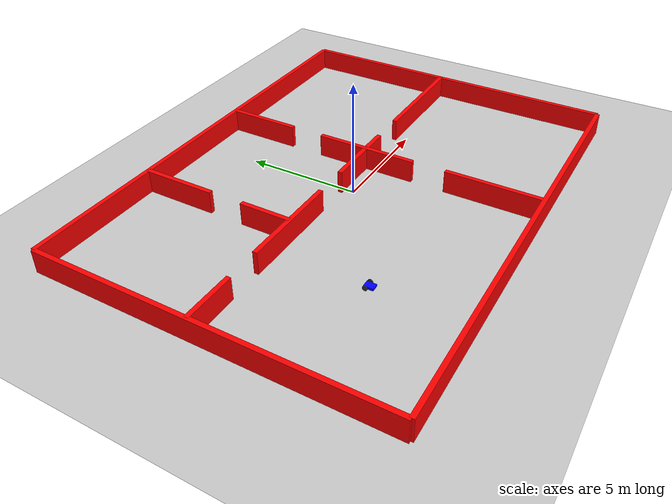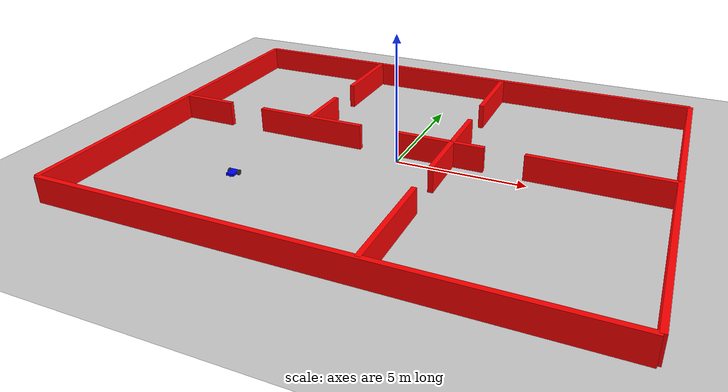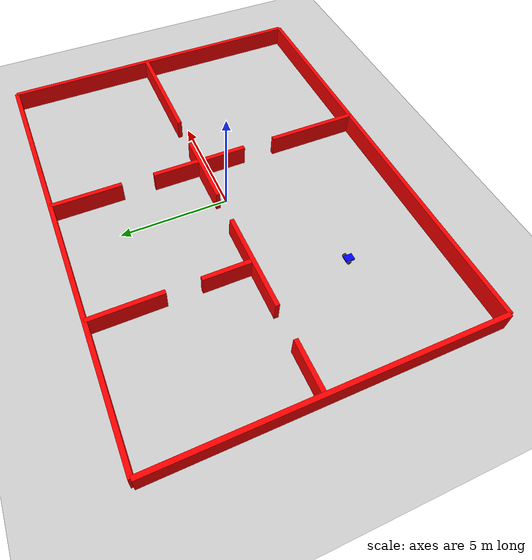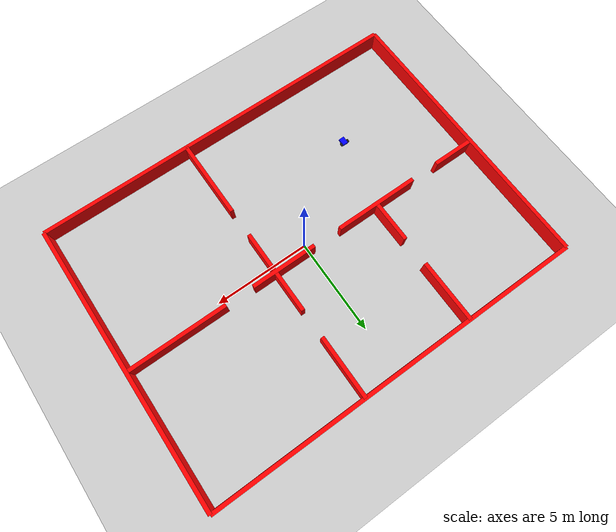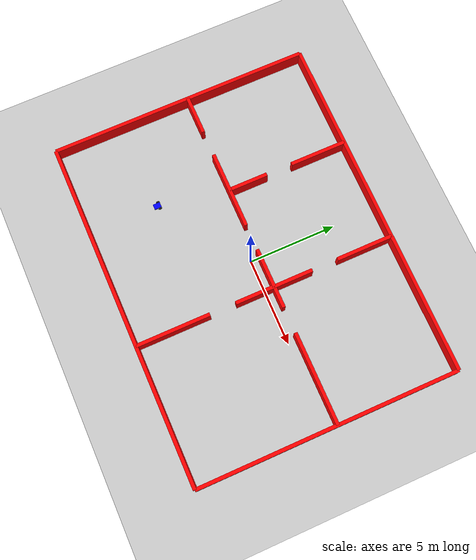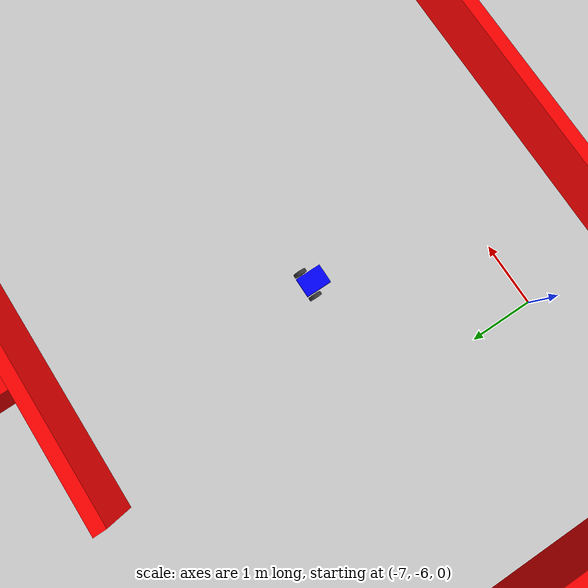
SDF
<?xml version="1.0" ?>
<sdf version="1.8">
  <world name="default">
    <plugin filename="gz-sim-physics-system" name="gz::sim::systems::Physics"></plugin>
    <plugin filename="gz-sim-scene-broadcaster-system" name="gz::sim::systems::SceneBroadcaster"></plugin>
    <plugin filename="gz-sim-sensors-system" name="gz::sim::systems::Sensors">
      <render_engine>ogre2</render_engine>
    </plugin>
    <plugin filename="gz-sim-contact-system" name="gz::sim::systems::Contact"></plugin>

    <scene>
      <ambient>0.4 0.4 0.4 1</ambient>
      <background>0.7 0.7 0.7 1</background>
      <shadows>0</shadows>
    </scene>
    <light name="sun" type="directional">
      <cast_shadows>1</cast_shadows>
      <pose>0 0 10 0 0 0</pose>
      <diffuse>0.8 0.8 0.8 1</diffuse>
      <specular>0.2 0.2 0.2 1</specular>
      <direction>0.5 0.1 -0.9</direction>
    </light>

    <gui fullscreen="0">
      <camera name="user_camera">
        <pose>0 0 24 0 1.56 3.14</pose>
      </camera>
    </gui>

    <model name="ground_plane">
      <static>true</static>
      <link name="link">
        <collision name="collision"><geometry><plane><normal>0 0 1</normal><size>100 100</size></plane></geometry></collision>
        <visual name="visual">
          <geometry><plane><normal>0 0 1</normal><size>100 100</size></plane></geometry>
          <material><ambient>0.8 0.8 0.8 1</ambient><diffuse>0.8 0.8 0.8 1</diffuse></material>
        </visual>
      </link>
    </model>

    <!-- 20x15m apartment centered at origin -->
    <model name="maze">
      <static>true</static>
      <link name="walls">
        <!-- Outer walls -->
        <visual name="b_bot"><pose>0 -7.5 0.5 0 0 0</pose><geometry><box><size>20 0.2 1</size></box></geometry><material><ambient>1 0 0 1</ambient><diffuse>1 0 0 1</diffuse></material></visual>
        <collision name="c_bot"><pose>0 -7.5 0.5 0 0 0</pose><geometry><box><size>20 0.2 1</size></box></geometry></collision>
        <visual name="b_top"><pose>0 7.5 0.5 0 0 0</pose><geometry><box><size>20 0.2 1</size></box></geometry><material><ambient>1 0 0 1</ambient><diffuse>1 0 0 1</diffuse></material></visual>
        <collision name="c_top"><pose>0 7.5 0.5 0 0 0</pose><geometry><box><size>20 0.2 1</size></box></geometry></collision>
        <visual name="b_lft"><pose>-10 0 0.5 0 0 0</pose><geometry><box><size>0.2 15 1</size></box></geometry><material><ambient>1 0 0 1</ambient><diffuse>1 0 0 1</diffuse></material></visual>
        <collision name="c_lft"><pose>-10 0 0.5 0 0 0</pose><geometry><box><size>0.2 15 1</size></box></geometry></collision>
        <visual name="b_rgt"><pose>10 0 0.5 0 0 0</pose><geometry><box><size>0.2 15 1</size></box></geometry><material><ambient>1 0 0 1</ambient><diffuse>1 0 0 1</diffuse></material></visual>
        <collision name="c_rgt"><pose>10 0 0.5 0 0 0</pose><geometry><box><size>0.2 15 1</size></box></geometry></collision>

        <!-- Horizontal wall at y=0.5: separates top rooms from bottom -->
        <visual name="wh1"><pose>-8.875 0.5 0.5 0 0 0</pose><geometry><box><size>2.25 0.2 1</size></box></geometry><material><ambient>1 0 0 1</ambient><diffuse>1 0 0 1</diffuse></material></visual>
        <collision name="cwh1"><pose>-8.875 0.5 0.5 0 0 0</pose><geometry><box><size>2.25 0.2 1</size></box></geometry></collision>
        <!-- Door gap (bedroom1 door) -->
        <visual name="wh2"><pose>-4 0.5 0.5 0 0 0</pose><geometry><box><size>4.5 0.2 1</size></box></geometry><material><ambient>1 0 0 1</ambient><diffuse>1 0 0 1</diffuse></material></visual>
        <collision name="cwh2"><pose>-4 0.5 0.5 0 0 0</pose><geometry><box><size>4.5 0.2 1</size></box></geometry></collision>
        <!-- Door gap (bedroom2 door) -->
        <visual name="wh3"><pose>1.5 0.5 0.5 0 0 0</pose><geometry><box><size>3.5 0.2 1</size></box></geometry><material><ambient>1 0 0 1</ambient><diffuse>1 0 0 1</diffuse></material></visual>
        <collision name="cwh3"><pose>1.5 0.5 0.5 0 0 0</pose><geometry><box><size>3.5 0.2 1</size></box></geometry></collision>
        <!-- Door gap (kitchen door) -->
        <visual name="wh4"><pose>7.375 0.5 0.5 0 0 0</pose><geometry><box><size>5.25 0.2 1</size></box></geometry><material><ambient>1 0 0 1</ambient><diffuse>1 0 0 1</diffuse></material></visual>
        <collision name="cwh4"><pose>7.375 0.5 0.5 0 0 0</pose><geometry><box><size>5.25 0.2 1</size></box></geometry></collision>

        <!-- Vertical wall at x=-4: bedroom1 | bedroom2 -->
        <visual name="wv1a"><pose>-4 1.625 0.5 0 0 0</pose><geometry><box><size>0.2 2.25 1</size></box></geometry><material><ambient>1 0 0 1</ambient><diffuse>1 0 0 1</diffuse></material></visual>
        <collision name="cwv1a"><pose>-4 1.625 0.5 0 0 0</pose><geometry><box><size>0.2 2.25 1</size></box></geometry></collision>
        <!-- Door gap -->
        <visual name="wv1b"><pose>-4 5.875 0.5 0 0 0</pose><geometry><box><size>0.2 3.25 1</size></box></geometry><material><ambient>1 0 0 1</ambient><diffuse>1 0 0 1</diffuse></material></visual>
        <collision name="cwv1b"><pose>-4 5.875 0.5 0 0 0</pose><geometry><box><size>0.2 3.25 1</size></box></geometry></collision>

        <!-- Vertical wall at x=2: bedrooms | kitchen -->
        <visual name="wv2a"><pose>2 1.625 0.5 0 0 0</pose><geometry><box><size>0.2 2.25 1</size></box></geometry><material><ambient>1 0 0 1</ambient><diffuse>1 0 0 1</diffuse></material></visual>
        <collision name="cwv2a"><pose>2 1.625 0.5 0 0 0</pose><geometry><box><size>0.2 2.25 1</size></box></geometry></collision>
        <!-- Door gap -->
        <visual name="wv2b"><pose>2 5.875 0.5 0 0 0</pose><geometry><box><size>0.2 3.25 1</size></box></geometry><material><ambient>1 0 0 1</ambient><diffuse>1 0 0 1</diffuse></material></visual>
        <collision name="cwv2b"><pose>2 5.875 0.5 0 0 0</pose><geometry><box><size>0.2 3.25 1</size></box></geometry></collision>

        <!-- Vertical wall at x=2: living room | bath -->
        <visual name="wv3a"><pose>2 -5.375 0.5 0 0 0</pose><geometry><box><size>0.2 4.25 1</size></box></geometry><material><ambient>1 0 0 1</ambient><diffuse>1 0 0 1</diffuse></material></visual>
        <collision name="cwv3a"><pose>2 -5.375 0.5 0 0 0</pose><geometry><box><size>0.2 4.25 1</size></box></geometry></collision>
        <!-- Door gap -->
        <visual name="wv3b"><pose>2 -0.625 0.5 0 0 0</pose><geometry><box><size>0.2 2.25 1</size></box></geometry><material><ambient>1 0 0 1</ambient><diffuse>1 0 0 1</diffuse></material></visual>
        <collision name="cwv3b"><pose>2 -0.625 0.5 0 0 0</pose><geometry><box><size>0.2 2.25 1</size></box></geometry></collision>
      </link>
    </model>

    <model name="explorer_bot">
      <pose>-5 -3.5 0.2 0 0 1.5707</pose>
   <plugin filename="gz-sim-diff-drive-system" name="gz::sim::systems::DiffDrive">
        <left_joint>left_wheel_joint</left_joint>
        <right_joint>right_wheel_joint</right_joint>
        <wheel_separation>0.4</wheel_separation>
        <wheel_radius>0.1</wheel_radius>
        <topic>/cmd_vel</topic>
        <odom_publish_frequency>30</odom_publish_frequency>
        <odom_topic>/odom</odom_topic>
        <frame_id>odom</frame_id>
        <child_frame_id>base_link</child_frame_id>
        <tf_topic>/tf</tf_topic>
      </plugin>

      <link name="chassis">
        <inertial><mass>1.0</mass><inertia><ixx>0.01</ixx><ixy>0</ixy><ixz>0</ixz><iyy>0.01</iyy><iyz>0</iyz><izz>0.01</izz></inertia></inertial>
        <collision name="collision"><geometry><box><size>0.4 0.3 0.1</size></box></geometry></collision>
        <visual name="visual"><geometry><box><size>0.4 0.3 0.1</size></box></geometry><material><ambient>0 0 1 1</ambient><diffuse>0 0 1 1</diffuse></material></visual>

        <collision name="caster_collision">
          <pose>-0.15 0 -0.05 0 0 0</pose><geometry><sphere><radius>0.05</radius></sphere></geometry>
          <surface><friction><ode><mu>0.01</mu><mu2>0.01</mu2></ode></friction></surface>
        </collision>
        <visual name="caster_visual"><pose>-0.15 0 -0.05 0 0 0</pose><geometry><sphere><radius>0.05</radius></sphere></geometry><material><ambient>0 0 0 1</ambient><diffuse>0 0 0 1</diffuse></material></visual>

      <sensor name="lidar" type="gpu_lidar">
          <pose>0.21 0 0.3 0 0 0</pose>
          <topic>/scan</topic>
          <update_rate>10</update_rate>
          <gz_frame_id>lidar</gz_frame_id> <ray>
            <scan><horizontal><samples>360</samples><resolution>1</resolution><min_angle>-3.14</min_angle><max_angle>3.14</max_angle></horizontal></scan>
            <range><min>0.20</min><max>8.0</max></range>
          </ray>
          <always_on>1</always_on>
          <visualize>true</visualize>
        </sensor>
      </link>

      <link name="left_wheel">
        <pose>0.1 0.2 0 -1.5707 0 0</pose>
        <inertial><mass>0.2</mass><inertia><ixx>0.001</ixx><iyy>0.001</iyy><izz>0.001</izz></inertia></inertial>
        <collision name="collision"><geometry><cylinder><radius>0.1</radius><length>0.05</length></cylinder></geometry></collision>
        <visual name="visual"><geometry><cylinder><radius>0.1</radius><length>0.05</length></cylinder></geometry><material><ambient>0.2 0.2 0.2 1</ambient><diffuse>0.2 0.2 0.2 1</diffuse></material></visual>
      </link>

      <link name="right_wheel">
        <pose>0.1 -0.2 0 -1.5707 0 0</pose>
        <inertial><mass>0.2</mass><inertia><ixx>0.001</ixx><iyy>0.001</iyy><izz>0.001</izz></inertia></inertial>
        <collision name="collision"><geometry><cylinder><radius>0.1</radius><length>0.05</length></cylinder></geometry></collision>
        <visual name="visual"><geometry><cylinder><radius>0.1</radius><length>0.05</length></cylinder></geometry><material><ambient>0.2 0.2 0.2 1</ambient><diffuse>0.2 0.2 0.2 1</diffuse></material></visual>
      </link>

      <joint name="left_wheel_joint" type="revolute"><parent>chassis</parent><child>left_wheel</child><axis><xyz>0 0 1</xyz></axis></joint>
      <joint name="right_wheel_joint" type="revolute"><parent>chassis</parent><child>right_wheel</child><axis><xyz>0 0 1</xyz></axis></joint>
    </model>
  </world>
</sdf>
